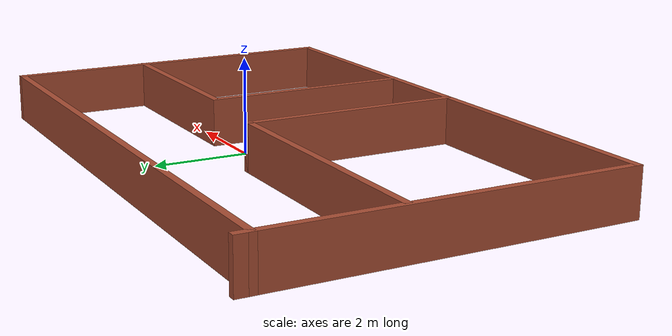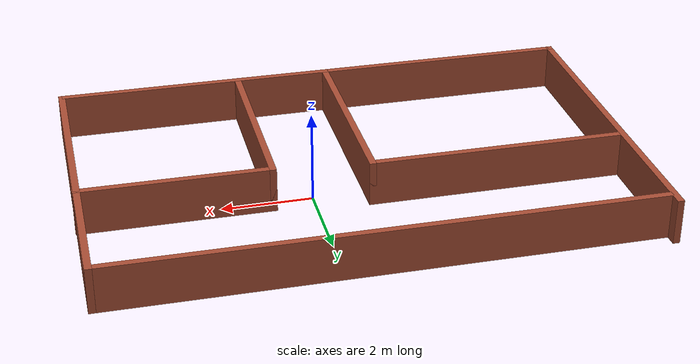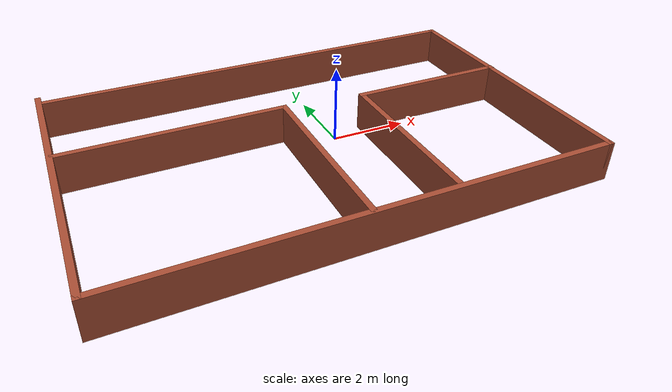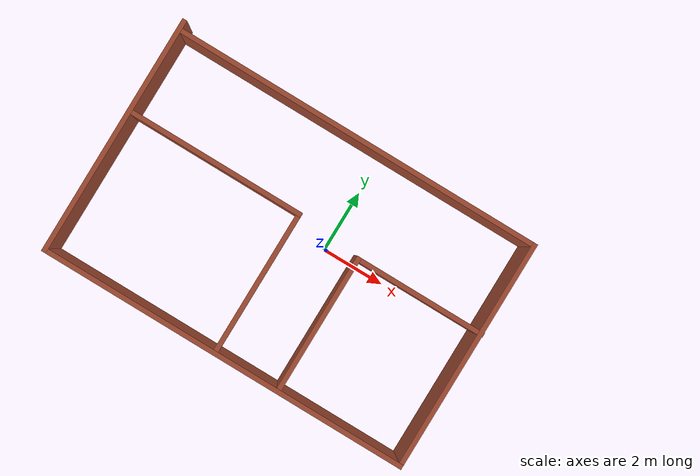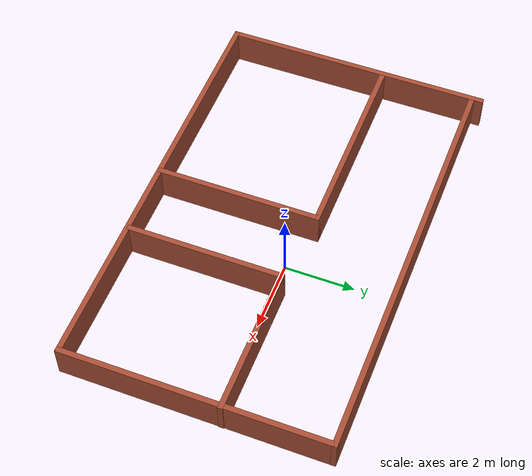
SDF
<?xml version='1.0'?>
<sdf version='1.6'>
  <model name='dang_house_2'>
    <pose frame=''>-0.929 -0.361 0 0 -0 0</pose>
    <link name='Wall_14'>
      <collision name='Wall_14_Collision'>
        <geometry>
          <box>
            <size>7.75 0.15 1</size>
          </box>
        </geometry>
        <pose frame=''>0 0 0.5 0 -0 0</pose>
      </collision>
      <visual name='Wall_14_Visual'>
        <pose frame=''>0 0 0.5 0 -0 0</pose>
        <geometry>
          <box>
            <size>7.75 0.15 1</size>
          </box>
        </geometry>
        <material>
          <script>
            <uri>file://media/materials/scripts/gazebo.material</uri>
            <name>Gazebo/Bricks</name>
          </script>
          <ambient>1 1 1 1</ambient>
        </material>
        <meta>
          <layer>0</layer>
        </meta>
      </visual>
      <pose frame=''>-5.933 0 0 0 0 -1.5708</pose>
    </link>
    <link name='Wall_15'>
      <collision name='Wall_15_Collision'>
        <geometry>
          <box>
            <size>12 0.15 1</size>
          </box>
        </geometry>
        <pose frame=''>0 0 0.5 0 -0 0</pose>
      </collision>
      <visual name='Wall_15_Visual'>
        <pose frame=''>0 0 0.5 0 -0 0</pose>
        <geometry>
          <box>
            <size>12 0.15 1</size>
          </box>
        </geometry>
        <material>
          <script>
            <uri>file://media/materials/scripts/gazebo.material</uri>
            <name>Gazebo/Bricks</name>
          </script>
          <ambient>1 1 1 1</ambient>
        </material>
        <meta>
          <layer>0</layer>
        </meta>
      </visual>
      <pose frame=''>-0.008 -3.8 0 0 -0 0</pose>
    </link>
    <link name='Wall_16'>
      <collision name='Wall_16_Collision'>
        <geometry>
          <box>
            <size>7.5 0.15 1</size>
          </box>
        </geometry>
        <pose frame=''>0 0 0.5 0 -0 0</pose>
      </collision>
      <visual name='Wall_16_Visual'>
        <pose frame=''>0 0 0.5 0 -0 0</pose>
        <geometry>
          <box>
            <size>7.5 0.15 1</size>
          </box>
        </geometry>
        <material>
          <script>
            <uri>file://media/materials/scripts/gazebo.material</uri>
            <name>Gazebo/Bricks</name>
          </script>
          <ambient>1 1 1 1</ambient>
        </material>
        <meta>
          <layer>0</layer>
        </meta>
      </visual>
      <pose frame=''>5.917 -0.125 0 0 -0 1.5708</pose>
    </link>
    <link name='Wall_17'>
      <collision name='Wall_17_Collision'>
        <geometry>
          <box>
            <size>12 0.15 1</size>
          </box>
        </geometry>
        <pose frame=''>0 0 0.5 0 -0 0</pose>
      </collision>
      <visual name='Wall_17_Visual'>
        <pose frame=''>0 0 0.5 0 -0 0</pose>
        <geometry>
          <box>
            <size>12 0.15 1</size>
          </box>
        </geometry>
        <material>
          <script>
            <uri>file://media/materials/scripts/gazebo.material</uri>
            <name>Gazebo/Bricks</name>
          </script>
          <ambient>0.435294 0.796078 0.67451 1</ambient>
        </material>
        <meta>
          <layer>0</layer>
        </meta>
      </visual>
      <pose frame=''>-0.008 3.55 0 0 -0 3.14159</pose>
    </link>
    <link name='Wall_19'>
      <collision name='Wall_19_Collision'>
        <geometry>
          <box>
            <size>5.75 0.15 1</size>
          </box>
        </geometry>
        <pose frame=''>0 0 0.5 0 -0 0</pose>
      </collision>
      <visual name='Wall_19_Visual'>
        <pose frame=''>0 0 0.5 0 -0 0</pose>
        <geometry>
          <box>
            <size>5.75 0.15 1</size>
          </box>
        </geometry>
        <material>
          <script>
            <uri>file://media/materials/scripts/gazebo.material</uri>
            <name>Gazebo/Bricks</name>
          </script>
          <ambient>1 1 1 1</ambient>
        </material>
        <meta>
          <layer>0</layer>
        </meta>
      </visual>
      <pose frame=''>-3.071 0.837 0 0 -0 0</pose>
    </link>
    <link name='Wall_20'>
      <collision name='Wall_20_Collision'>
        <geometry>
          <box>
            <size>4.75 0.15 1</size>
          </box>
        </geometry>
        <pose frame=''>0 0 0.5 0 -0 0</pose>
      </collision>
      <visual name='Wall_20_Visual'>
        <pose frame=''>0 0 0.5 0 -0 0</pose>
        <geometry>
          <box>
            <size>4.75 0.15 1</size>
          </box>
        </geometry>
        <material>
          <script>
            <uri>file://media/materials/scripts/gazebo.material</uri>
            <name>Gazebo/Bricks</name>
          </script>
          <ambient>1 1 1 1</ambient>
        </material>
        <meta>
          <layer>0</layer>
        </meta>
      </visual>
      <pose frame=''>-0.271 -1.463 0 0 0 -1.5708</pose>
    </link>
    <link name='Wall_23'>
      <collision name='Wall_23_Collision'>
        <geometry>
          <box>
            <size>4.5 0.15 1</size>
          </box>
        </geometry>
        <pose frame=''>0 0 0.5 0 -0 0</pose>
      </collision>
      <visual name='Wall_23_Visual'>
        <pose frame=''>0 0 0.5 0 -0 0</pose>
        <geometry>
          <box>
            <size>4.5 0.15 1</size>
          </box>
        </geometry>
        <material>
          <script>
            <uri>file://media/materials/scripts/gazebo.material</uri>
            <name>Gazebo/Bricks</name>
          </script>
          <ambient>1 1 1 1</ambient>
        </material>
        <meta>
          <layer>0</layer>
        </meta>
      </visual>
      <pose frame=''>1.833 -1.561 0 0 -0 1.5708</pose>
    </link>
    <link name='Wall_24'>
      <collision name='Wall_24_Collision'>
        <geometry>
          <box>
            <size>4.25 0.15 1</size>
          </box>
        </geometry>
        <pose frame=''>0 0 0.5 0 -0 0</pose>
      </collision>
      <visual name='Wall_24_Visual'>
        <pose frame=''>0 0 0.5 0 -0 0</pose>
        <geometry>
          <box>
            <size>4.25 0.15 1</size>
          </box>
        </geometry>
        <material>
          <script>
            <uri>file://media/materials/scripts/gazebo.material</uri>
            <name>Gazebo/Bricks</name>
          </script>
          <ambient>1 1 1 1</ambient>
        </material>
        <meta>
          <layer>0</layer>
        </meta>
      </visual>
      <pose frame=''>3.883 0.614 0 0 -0 0</pose>
    </link>
    <static>1</static>
  </model>
</sdf>
